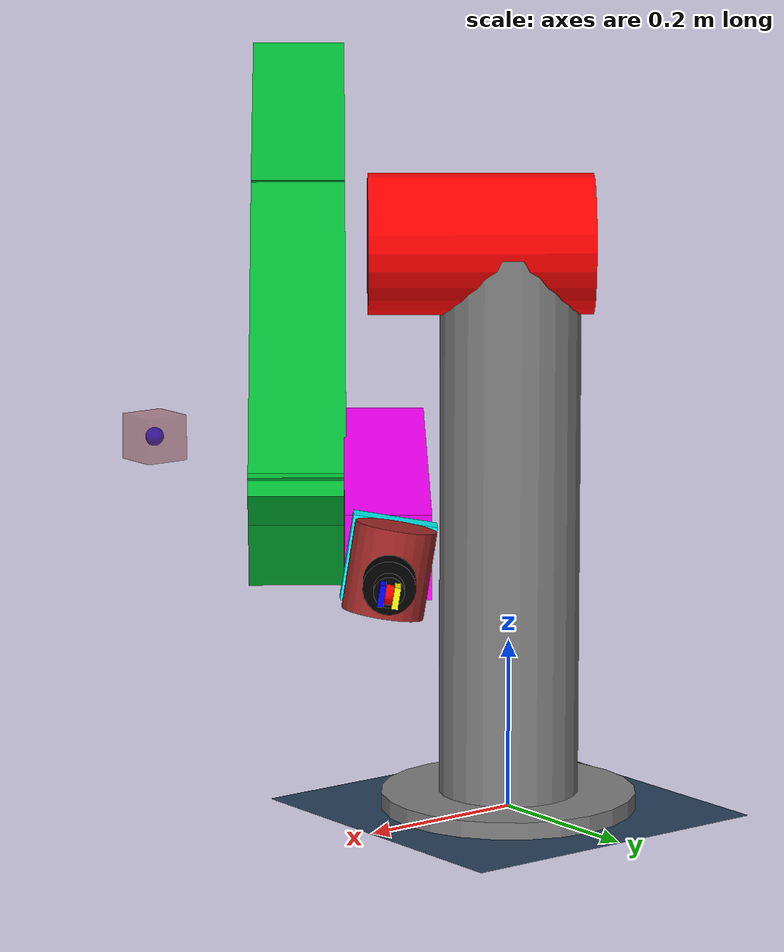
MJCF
<mujoco model="PUMA560 scene">
  <include file="puma560.xml"/>

  <statistic center="0.3 0 0.4" extent="1"/>

  <visual>
    <headlight diffuse="0.6 0.6 0.6" ambient="0.3 0.3 0.3" specular="0 0 0"/>
    <rgba haze="0.15 0.25 0.35 1"/>
    <global azimuth="120" elevation="-20"/>
  </visual>

  <asset>
    <texture type="skybox" builtin="gradient" rgb1="0.3 0.5 0.7" rgb2="0 0 0" width="512" height="3072"/>
    <texture type="2d" name="groundplane" builtin="checker" mark="edge" rgb1="0.2 0.3 0.4" rgb2="0.1 0.2 0.3"
      markrgb="0.8 0.8 0.8" width="300" height="300"/>
    <material name="groundplane" texture="groundplane" texuniform="true" texrepeat="5 5" reflectance="0.2"/>
  </asset>

  <worldbody>
    <light pos="0 0 1.5" dir="0 0 -1" directional="true"/>
    <geom name="floor" size="0.2 0.2 0.05" type="plane" material="groundplane"/>
  </worldbody>
</mujoco>

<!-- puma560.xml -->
<mujoco model="C:/Users/SG/OneDrive - IIT Kanpur/Documents/MATLAB Drive/Robots/New folder/Puma560.urdf">
  <compiler angle="radian"/>
  <worldbody>
      <geom size="0.15 0.01" pos="0 0 0.01" type="cylinder"/>
      <geom size="0.082 0.33" pos="0 0 0.33" type="cylinder" />
    <body name="solid" pos="0 0 0.669" quat="0.315322 0 0 0.948985">
      <joint name="joint1" pos="0 0 0" axis="0 0 1" range="-2.792 2.792"/>
      <geom size="0.082 0.13" pos="-0.035 0 0" quat="-0.707106 -2.44949e-07 0.707108 -2.44949e-07" type="cylinder"  rgba="1 0 0 1"/>
      <body name="solid_0" pos="-0.1622 0 0" quat="0.275623 -0.961266 0 0">
        <joint name="joint2" pos="0 0 0" axis="-1 0 0" range="-3.9269 0.7854"/>
        <geom size="0.0525 0.125 0.145" pos="-0.082 -0.056 -0.007" type="box" rgba="0 0.7 0.2 1"/>
        <geom size="0.0525 0.215 0.07" pos="-0.082 0.27 0.031" quat="0.996802 -0.0799147 0 0" type="box"  rgba="0 0.7 0.2 1"/>
        <geom size="0.0525 0.215 0.07" pos="-0.082 0.267 -0.039" quat="0.995004 0.0998334 0 0" type="box"  rgba="0 0.7 0.2 1"/>
        <body name="solid_1" pos="0.086 0.42 0" quat="0.453601 -0.891205 0 0">
          <joint name="joint3" pos="0 0 0" axis="-1 0 0" range="-0.7854 3.9269"/>
          <geom size="0.044 0.04 0.22" pos="-0.074 -0.034 0.13" quat="0.999688 -0.0249974 0 0" type="box" rgba="1 0 1 1"/>
          <geom size="0.044 0.04 0.22" pos="-0.074 0.015 0.13" quat="0.997551 0.0699428 0 0" type="box" rgba="1 0 1 1"/>
          <body name="solid_2" pos="-0.074 -0.02 0.353" quat="0.761362 0 0 0.648327">
            <joint name="joint4" pos="0 0 0" axis="0 0 1" range="-1.9198 2.967"/>
            <geom size="0.0435 0.0425 0.0195" pos="0 0 0.019" type="box" rgba="0 1 1 1"/>
            <body name="solid_3" pos="0 0 0.079" quat="0.99997 -0.00777642 0 0">
              <joint name="joint5" pos="0 0 0" axis="-1 0 0" range="-1.7453 1.7453"/>
              <geom size="0.041 0.044" quat="-0.707035 -2.44949e-07 0.707179 -2.44949e-07" type="cylinder"  rgba="0.65 0.16 0.16 1"/>
              <body name="solid_4" pos="0 0 -0.08" quat="1 0 0 2.5e-06">
                <joint name="joint6" pos="0 0 0" axis="0 0 1" range="-4.6425 4.6425"/>
                <geom size="0.019 0.025" pos="0 0 0.136" type="cylinder" rgba="0 0 0 1"/>
                <geom size="0.026 0.0235" pos="0 0 0.1845" type="cylinder" rgba="0 0 0 1"/>
                <geom size="0.015 0.015" pos="0 0 0.222" type="cylinder" rgba="0 0 0 1"/>
                  <site name="attachment_site" size="0.01" pos="0 0.0 0.25" quat="-1 1 1 1" rgba="1 0 0 1" group="1"/>
                <body name="GripperL" pos="0 0.007 0.23" quat="0.707105 0 0 0.707108">
                  <joint name="gripper::left" pos="0 0 0" axis="1 -4e-06 0" type="slide" range="-0.004 0.01"/>
                  <geom size="0.003 0.0105 0.0155" pos="2e-05 0 0.023" type="box"  rgba="0 0 1 1"/>
                </body>
                <body name="GripperR" pos="2e-05 -0.007 0.23" quat="0.707105 0 0 -0.707108">
                  <joint name="gripper::right" pos="0 0 0" axis="1 4e-06 0" type="slide" range="-0.004 0.01"/>
                  <geom size="0.003 0.0105 0.0155" pos="1.9e-05 0 0.023" type="box" rgba="1 1 0 1"/>
                </body>
              </body>
            </body>
          </body>
        </body>
      </body>
    </body>

    <body name="target" pos="0.5 0 .5" quat="0 1 0 0" mocap="true">
      <geom type="box" size=".025 .025 .025" contype="0" conaffinity="0" rgba=".6 .3 .3 .5"/>
      <site type="sphere" size="0.01" rgba="0 0 1 1" group="1"/>
    </body>

  </worldbody>
    <actuator>

        <motor name="joint1" joint="joint1"/>
        <motor name="joint2" joint="joint2"/>
        <motor name="joint3" joint="joint3"/>
        <motor name="joint4" joint="joint4"/>
        <motor name="joint5" joint="joint5"/>
        <motor name="joint6" joint="joint6"/>
        <motor name="gripper::left" joint="gripper::left"/>
        <motor name="gripper::right" joint="gripper::right"/>

    </actuator>

</mujoco>
